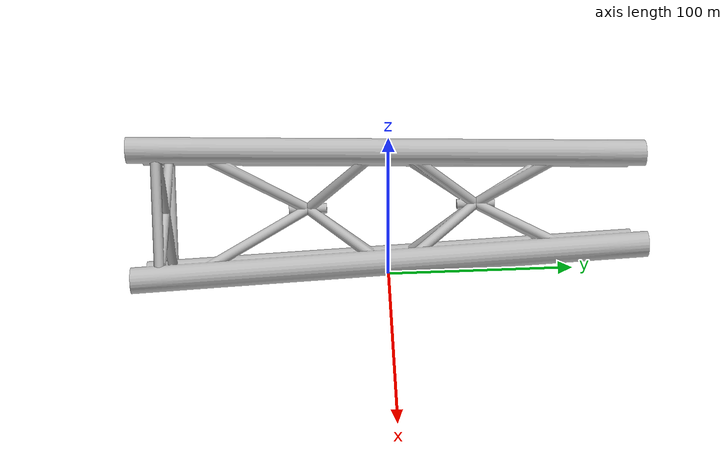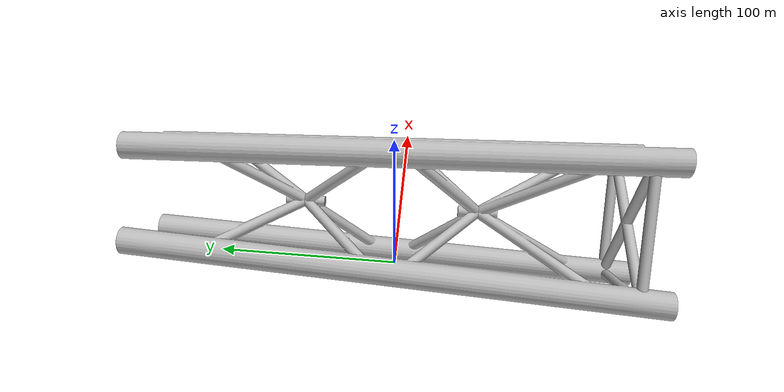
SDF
<?xml version="1.0" ?>
<!--Yaniel Carreno
   Wind Turbine description
-->
<sdf version="1.0">
  <model name="wind_jacket">
    <static>true</static>
    <pose>0 0 0.1 0 0 0</pose>
    <link name="turbine">
      <collision name="turbine_collision">
        <geometry>
          <mesh>
            <uri>model://wind_jacket/meshes/wind_jacket.stl</uri>
            <scale>0.013 0.013 0.013</scale>
          </mesh>
        </geometry>
      </collision>

      <visual name="turbine_visual">
        <geometry>
          <mesh>
            <uri>model://wind_jacket/meshes/wind_jacket.obj</uri>
            <scale>0.013 0.013 0.013</scale>
          </mesh>
        </geometry>
        <material>
          <script>
            <uri>file://Media/materials/scripts/fiducials.material</uri>
            <name>Wind/Turbine</name>
          </script>
        </material>
      </visual>
      <self_collide>0</self_collide>
    </link>

  </model>
</sdf>
